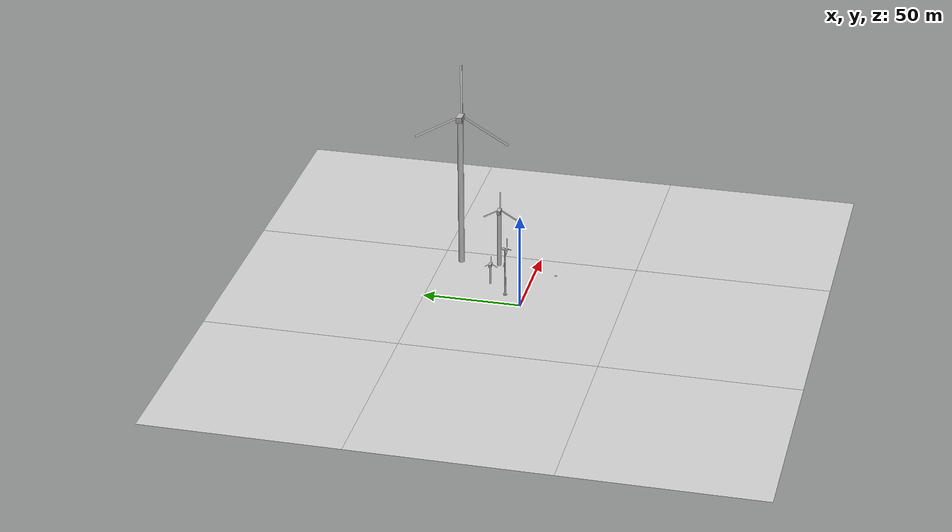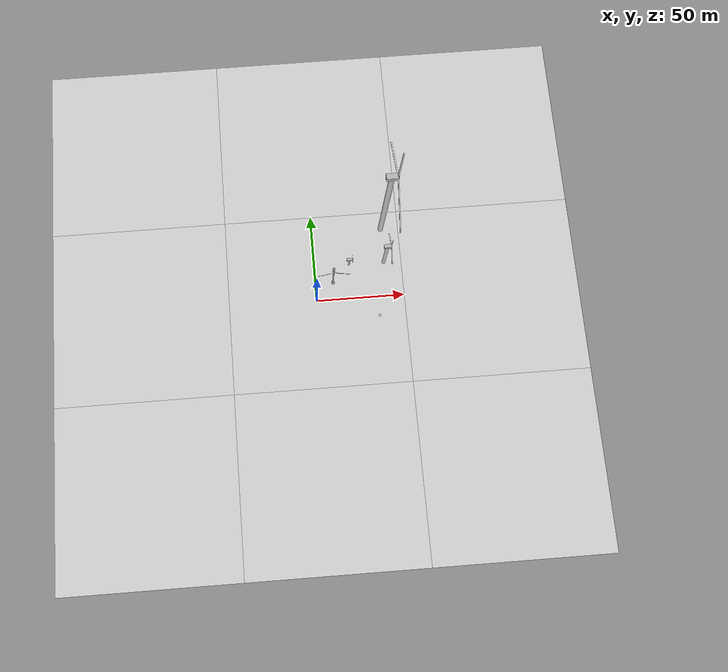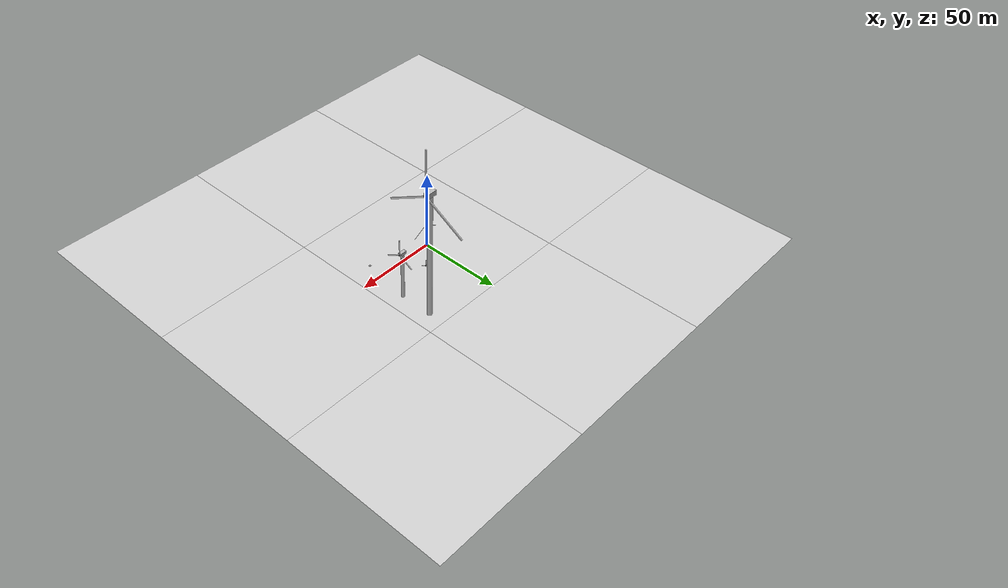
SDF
<?xml version="1.0" encoding="UTF-8"?>
<sdf version="1.9">
  <world name="default">
    <physics type="ode">
      <max_step_size>0.004</max_step_size>
      <real_time_factor>1.0</real_time_factor>
      <real_time_update_rate>250</real_time_update_rate>
    </physics>
    <gravity>0 0 -9.8</gravity>
    <magnetic_field>2.64e-05 -4.11e-07 3.50e-05</magnetic_field>  <!-- Sevilla, Spain (WMM2020) -->
    <atmosphere type="adiabatic"/>
    <scene>
      <sky>
        <clouds>
          <speed>12</speed>
        </clouds>
      </sky>
      <grid>true</grid>
      <ambient>0.5 0.5 0.5 0.3</ambient>
      <background>0.3 0.3 0.3 0.3</background>
      <shadows>true</shadows>
    </scene>

    <light name="sunUTC" type="directional">
      <pose>0 0 500 0 -0 0</pose>
      <cast_shadows>true</cast_shadows>
      <intensity>1</intensity>
      <direction>0.001 0.625 -0.78</direction>
      <diffuse>0.904 0.904 0.904 1</diffuse>
      <specular>0.271 0.271 0.271 1</specular>
      <attenuation>
        <range>2000</range>
        <linear>0</linear>
        <constant>1</constant>
        <quadratic>0</quadratic>
      </attenuation>
      <spot>
        <inner_angle>0</inner_angle>
        <outer_angle>0</outer_angle>
        <falloff>0</falloff>
      </spot>
    </light>
    <light type="directional" name="sun_2">
      <cast_shadows>true</cast_shadows>
      <pose>200 200 200 0 0 0</pose>
      <diffuse>0.5 0.5 0.5 0.3</diffuse>
      <specular>0.2 0.2 0.2 0.3</specular>
      <attenuation>
        <range>2000</range>
        <constant>1</constant>
        <linear>0</linear>
        <quadratic>0</quadratic>
      </attenuation>
      <direction>0.01 0.01 -0.9</direction>
    </light>

    <spherical_coordinates>
      <surface_model>EARTH_WGS84</surface_model>
      <world_frame_orientation>ENU</world_frame_orientation>
      <latitude_deg>37.410366</latitude_deg>
      <longitude_deg>-6.002338</longitude_deg>
      <elevation>0</elevation>
    </spherical_coordinates>

    <include>
      <uri>model://ground_grass</uri>
    </include>

    <!-- Bases -->
    <!--  UAV_Base1 -->
    <include>
      <name>uav_base_1</name>
      <uri>model://uav_base</uri>
      <pose>35.0 -11.0 0 0 0 0</pose>
    </include>
    <!--  WindGeneratorBasic1 -->
    <include>
      <name>windgeneratorbasic_1</name>
      <uri>model://windgeneratorbasic</uri>
      <pose>10.0 10.0 0 0 0 0</pose>
    </include>
    <!-- wind_turbine_1 -->
    <include>
      <name>wind_turbine_1</name>
      <uri>model://wind_turbine</uri>
      <pose>20.0 20.0 0 0 0 0</pose>
    </include>
    <!-- wind_turbine_1 -->
    <include>
      <name>wind_turbine_2</name>
      <uri>model://wind_turbine30m</uri>
      <pose>40.0 20.0 0 0 0 0</pose>
    </include>
    <include>
      <name>wind_turbine_3</name>
      <uri>model://wind_turbine80m</uri>
      <pose>40.0 40.0 0 0 0 0</pose>
    </include>
  </world>
</sdf>

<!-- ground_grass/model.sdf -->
<sdf version='1.6'>
  <model name="ground_grass">
    <include>
      <name>grass_1</name>
      <uri>model://grass_floor_textured</uri>
      <pose>0 0 0 0 0 0</pose>
    </include>
    <include>
      <name>grass_2</name>
      <uri>model://grass_floor_textured</uri>
      <pose>0 100 0 0 0 0</pose>
    </include>
    <include>
      <name>grass_3</name>
      <uri>model://grass_floor_textured</uri>
      <pose>0 -100 0 0 0 0</pose>
    </include>
    <include>
      <name>grass_4</name>
      <uri>model://grass_floor_textured</uri>
      <pose>-100 0 0 0 0 0</pose>
    </include>

    <include>
      <name>grass_5</name>
      <uri>model://grass_floor_textured</uri>
      <pose>-100 100 0 0 0 0</pose>
    </include>
    <include>
      <name>grass_6</name>
      <uri>model://grass_floor_textured</uri>
      <pose>-100 -100 0 0 0 0</pose>
    </include>
    <include>
      <name>grass_7</name>
      <uri>model://grass_floor_textured</uri>
      <pose>100 0 0 0 0 0</pose>
    </include>
    <include>
      <name>grass_8</name>
      <uri>model://grass_floor_textured</uri>
      <pose>100 -100 0 0 0 0</pose>
    </include>
    <include>
      <name>grass_9</name>
      <uri>model://grass_floor_textured</uri>
      <pose>100 100 0 0 0 0</pose>
    </include>
  </model>
</sdf>

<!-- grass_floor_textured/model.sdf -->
<sdf version="1.9">
  <model name="grass_floor_textured">
    <static>true</static>
    <link name="link">
      <collision name="collision">
        <geometry>
          <plane>
            <normal>0 0 1</normal>
            <size>100 100</size>
          </plane>
        </geometry>
      </collision>
      <visual name="visual">
        <geometry>
          <mesh>
            <uri>model://grass_floor_textured/materials/plane_tiled.dae</uri>
          </mesh>
        </geometry>
        <material>
          <ambient>0.8 0.8 0.8 1</ambient>
          <diffuse>0.8 0.8 0.8 1</diffuse>
          <specular>0.1 0.1 0.1 1</specular>
          <pbr>
            <metal>
              <albedo_map>materials/grass.jpg</albedo_map>
              <metalness>0.0</metalness>
              <roughness>0.8</roughness>
            </metal>
          </pbr>
        </material>
      </visual>
    </link>
  </model>
</sdf>

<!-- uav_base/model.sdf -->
<sdf version='1.6'>
  <model name='uav_base'>
    <pose frame=''>0 0 0.07 0 0 0</pose>
    <self_collide>false</self_collide>
    <!-- BASE_LINK FRAME -->
    <link name='uav_base_base'>
      <pose frame=''>0 0 0 0 0 0</pose>

      <visual name='uav_base_visual'>
        <pose frame=''>0 0 0 1.5708 0 0</pose>
        <geometry>
          <mesh>
            <scale>1 1 1</scale>
            <uri>model://uav_base/meshes/uav_base.obj</uri>
          </mesh>
        </geometry>
      </visual>

      <collision name='uav_base_collision'>
        <pose frame=''>0 0 0 0 0 0</pose>
        <geometry>
          <box>
            <size>0.5 0.5 0.2</size>
          </box>
        </geometry>
      </collision>
    </link>
    <static>true</static>
  </model>
</sdf>

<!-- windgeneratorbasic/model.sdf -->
<sdf version='1.6'>
  <model name='windgeneratorbasic'>
    <pose frame=''>0 0 0.07 0 0 0</pose>
    <self_collide>false</self_collide>
    <!-- BASE_LINK FRAME -->
    <link name='windgeneratorbasic_base'>
      <pose frame=''>0 0 0 0 0 0</pose>

      <visual name='windgeneratorbasic_visual'>
        <pose frame=''>0 0 0 1.5708 0 0</pose>
        <geometry>
          <mesh>
            <scale>1 1 1</scale>
            <uri>model://windgeneratorbasic/meshes/windTurbineBasic.obj</uri>
          </mesh>
        </geometry>
      </visual>
    </link>
    <static>true</static>
  </model>
</sdf>

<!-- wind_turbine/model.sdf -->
<sdf version="1.9">
  <model name="wind_turbine">
    <pose>0 0 0 0 0 0</pose>
    <static>false</static>

    <!-- Base/Torre -->
    <link name="tower">
      <pose>0 0 5 0 0 0</pose>
      <inertial>
        <mass>1000</mass>
        <inertia>
          <ixx>833.33</ixx>
          <iyy>833.33</iyy>
          <izz>10</izz>
          <ixy>0</ixy>
          <ixz>0</ixz>
          <iyz>0</iyz>
        </inertia>
      </inertial>
      <collision name="tower_collision">
        <geometry>
          <cylinder>
            <radius>0.5</radius>
            <length>10</length>
          </cylinder>
        </geometry>
      </collision>
      <visual name="tower_visual">
        <geometry>
          <cylinder>
            <radius>0.5</radius>
            <length>10</length>
          </cylinder>
        </geometry>
        <material>
          <ambient>0.8 0.8 0.8 1</ambient>
          <diffuse>0.8 0.8 0.8 1</diffuse>
        </material>
      </visual>
    </link>

    <!-- Góndola (nacelle) -->
    <link name="nacelle">
      <pose>0 0 10.5 0 0 0</pose>
      <inertial>
        <mass>100</mass>
        <inertia>
          <ixx>8.33</ixx>
          <iyy>8.33</iyy>
          <izz>8.33</izz>
          <ixy>0</ixy>
          <ixz>0</ixz>
          <iyz>0</iyz>
        </inertia>
      </inertial>
      <collision name="nacelle_collision">
        <geometry>
          <box>
            <size>3 1.5 1.5</size>
          </box>
        </geometry>
      </collision>
      <visual name="nacelle_visual">
        <geometry>
          <box>
            <size>3 1.5 1.5</size>
          </box>
        </geometry>
        <material>
          <ambient>0.7 0.7 0.7 1</ambient>
          <diffuse>0.7 0.7 0.7 1</diffuse>
        </material>
      </visual>
    </link>

    <!-- Hub central (centro de las aspas) -->
    <link name="hub">
      <pose>1.8 0 10.5 0 1.5708 0</pose>
      <inertial>
        <mass>50</mass>
        <inertia>
          <ixx>2.08</ixx>
          <iyy>2.08</iyy>
          <izz>2.08</izz>
          <ixy>0</ixy>
          <ixz>0</ixz>
          <iyz>0</iyz>
        </inertia>
      </inertial>
      <collision name="hub_collision">
        <geometry>
          <cylinder>
            <radius>0.4</radius>
            <length>0.5</length>
          </cylinder>
        </geometry>
      </collision>
      <visual name="hub_visual">
        <geometry>
          <cylinder>
            <radius>0.4</radius>
            <length>0.5</length>
          </cylinder>
        </geometry>
        <material>
          <ambient>0.3 0.3 0.3 1</ambient>
          <diffuse>0.3 0.3 0.3 1</diffuse>
        </material>
      </visual>
    </link>

    <!-- Aspa 1 (0 grados) -->
    <link name="blade_1">
      <pose>1.8 0 10.5 0 0 0</pose>
      <inertial>
        <pose>2 0 0 0 0 0</pose>
        <mass>20</mass>
        <inertia>
          <ixx>0.2</ixx>
          <iyy>13.33</iyy>
          <izz>13.33</izz>
          <ixy>0</ixy>
          <ixz>0</ixz>
          <iyz>0</iyz>
        </inertia>
      </inertial>
      <collision name="blade_1_collision">
        <pose>0 0 2 0 0 0</pose>
        <geometry>
          <box>
            <size>0.1 0.3 4.0</size>
          </box>
        </geometry>
      </collision>
      <visual name="blade_1_visual">
        <pose>0 0 2 0 0 0</pose>
        <geometry>
          <box>
            <size>0.1 0.3 4.0</size>
          </box>
        </geometry>
        <material>
          <ambient>1 1 1 1</ambient>
          <diffuse>1 1 1 1</diffuse>
        </material>
      </visual>
    </link>

    <!-- Aspa 2 (120 grados) -->
    <link name="blade_2">
      <pose>1.8 0 10.5 0 0 0</pose>
      <inertial>
        <pose>2 0 0 0 0 0</pose>
        <mass>20</mass>
        <inertia>
          <ixx>0.2</ixx>
          <iyy>13.33</iyy>
          <izz>13.33</izz>
          <ixy>0</ixy>
          <ixz>0</ixz>
          <iyz>0</iyz>
        </inertia>
      </inertial>
      <collision name="blade_2_collision">
        <pose>0 -1.5 -1.0 2.0944 0  0 </pose>
        <geometry>
          <box>
            <size>0.1 0.3 4.0</size>
          </box>
        </geometry>
      </collision>
      <visual name="blade_2_visual">
        <pose>0 -1.5 -1.0 2.0944 0  0 </pose>
        <geometry>
          <box>
            <size>0.1 0.3 4.0</size>
          </box>
        </geometry>
        <material>
          <ambient>1 1 1 1</ambient>
          <diffuse>1 1 1 1</diffuse>
        </material>
      </visual>
    </link>

    <!-- Aspa 3 (240 grados) -->
    <link name="blade_3">
      <pose>1.8 0 10.5  0 0 0</pose>
      <inertial>
        <pose>2 0 0 0 0 0</pose>
        <mass>20</mass>
        <inertia>
          <ixx>0.2</ixx>
          <iyy>13.33</iyy>
          <izz>13.33</izz>
          <ixy>0</ixy>
          <ixz>0</ixz>
          <iyz>0</iyz>
        </inertia>
      </inertial>
      <collision name="blade_3_collision">
        <pose>0 1.5 -1.0 4.1888 0  0 </pose>
        <geometry>
          <box>
            <size>0.1 0.3 4.0</size>
          </box>
        </geometry>
      </collision>
      <visual name="blade_3_visual">
        <pose>0 1.5 -1.0 4.1888  0 0</pose>
        <geometry>
          <box>
            <size>0.1 0.3 4.0</size>
          </box>
        </geometry>
        <material>
          <ambient>1 1 1 1</ambient>
          <diffuse>1 1 1 1</diffuse>
        </material>
      </visual>
    </link>

    <!-- Joint: Torre fija al mundo -->
    <joint name="tower_fixed" type="fixed">
      <parent>world</parent>
      <child>tower</child>
    </joint>

    <!-- Joint: Góndola con rotación yaw (orientación al viento) -->
    <joint name="nacelle_yaw_joint" type="revolute">
      <parent>tower</parent>
      <child>nacelle</child>
      <axis>
        <xyz>0 0 1</xyz>
        <limit>
          <lower>-1e16</lower>
          <upper>1e16</upper>
        </limit>
        <dynamics>
          <damping>0.5</damping>
          <friction>0.1</friction>
        </dynamics>
      </axis>
    </joint>

    <!-- Joint: Hub giratorio conectado a la góndola -->
    <joint name="rotor_joint" type="revolute">
      <parent>nacelle</parent>
      <child>hub</child>
      <axis>
        <xyz>0 0 1</xyz>
        <limit>
          <lower>-1e16</lower>
          <upper>1e16</upper>
        </limit>
      </axis>
    </joint>

    <!-- Aspas fijas al hub (separadas 120 grados) -->
    <joint name="blade_1_joint" type="fixed">
      <parent>hub</parent>
      <child>blade_1</child>
    </joint>

    <joint name="blade_2_joint" type="fixed">
      <parent>hub</parent>
      <child>blade_2</child>
    </joint>

    <joint name="blade_3_joint" type="fixed">
      <parent>hub</parent>
      <child>blade_3</child>
    </joint>

    <!-- Plugin para aplicar velocidad constante al rotor -->
    <plugin
      filename="gz-sim-joint-controller-system"
      name="gz::sim::systems::JointController">
      <topic>/model/wind_turbine/rotor_speed_cmd</topic>
      <joint_name>rotor_joint</joint_name>
      <use_velocity_commands>true</use_velocity_commands>
      <initial_velocity>1.0</initial_velocity>
    </plugin>

    <!-- Plugin de servo para control de posición de la góndola (yaw) -->
    <plugin
      filename="gz-sim-joint-position-controller-system"
      name="gz::sim::systems::JointPositionController">
      <joint_name>nacelle_yaw_joint</joint_name>
      <topic>/model/wind_turbine/gondola_yaw_cmd</topic>
      <p_gain>10.0</p_gain>
      <i_gain>0.1</i_gain>
      <d_gain>0.5</d_gain>
      <i_max>1.0</i_max>
      <i_min>-1.0</i_min>
      <cmd_max>100</cmd_max>
      <cmd_min>-100</cmd_min>
    </plugin>

  </model>
</sdf>

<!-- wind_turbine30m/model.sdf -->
<sdf version="1.9">
  <model name="wind_turbine30m">
    <pose>0 0 0 0 0 0</pose>
    <static>false</static>

    <!-- ===================== TORRE ===================== -->
    <link name="tower">
      <pose>0 0 15 0 0 0</pose> <!-- Centro a mitad de altura -->
      <inertial>
        <mass>1000</mass>
        <inertia>
          <ixx>833.33</ixx>
          <iyy>833.33</iyy>
          <izz>10</izz>
        </inertia>
      </inertial>
      <collision name="collision">
        <geometry>
          <cylinder>
            <radius>1</radius>
            <length>30</length>
          </cylinder>
        </geometry>
      </collision>
      <visual name="visual">
        <geometry>
          <cylinder>
            <radius>1</radius>
            <length>30</length>
          </cylinder>
        </geometry>
        <material>
          <ambient>0.8 0.8 0.8 1</ambient>
          <diffuse>0.8 0.8 0.8 1</diffuse>
        </material>
      </visual>
    </link>

    <!-- ===================== GÓNDOLA (Nacelle) ===================== -->
    <link name="nacelle">
      <pose>0 0 31 0 0 0</pose> <!-- Encima de la torre -->
      <inertial>
        <mass>100</mass>
        <inertia>
          <ixx>8.33</ixx>
          <iyy>8.33</iyy>
          <izz>8.33</izz>
        </inertia>
      </inertial>
      <collision name="collision">
        <geometry>
          <box>
            <size>4 2 2</size>
          </box>
        </geometry>
      </collision>
      <visual name="visual">
        <geometry>
          <box>
            <size>4 2 2</size>
          </box>
        </geometry>
        <material>
          <ambient>0.7 0.7 0.7 1</ambient>
          <diffuse>0.7 0.7 0.7 1</diffuse>
        </material>
      </visual>
    </link>

    <!-- ===================== ROTOR (Hub + 3 Aspas como un solo cuerpo) ===================== -->
    <link name="rotor">
      <pose>2 0 31 0 0 0</pose> <!-- Delante de góndola-->
      <inertial>
        <!-- Masa total: hub(50) + 3 aspas(20*3) = 110 kg -->
        <mass>110</mass>
        <inertia>
          <!-- Inercia aproximada del conjunto rotor -->
          <ixx>42</ixx>
          <iyy>800</iyy>  <!-- Mayor inercia en dirección perpendicular al eje -->
          <izz>800</izz>
          <ixy>0</ixy>
          <ixz>0</ixz>
          <iyz>0</iyz>
        </inertia>
      </inertial>

      <!-- Hub central -->
      <collision name="hub_collision">
        <pose>0 0 0 0 1.5708 0</pose>
        <geometry>
          <cylinder>
            <radius>0.4</radius>
            <length>0.5</length>
          </cylinder>
        </geometry>
      </collision>
      <visual name="hub_visual">
        <pose>0 0 0 0 1.5708 0</pose>
        <geometry>
          <cylinder>
            <radius>0.4</radius>
            <length>0.5</length>
          </cylinder>
        </geometry>
        <material>
          <ambient>0.3 0.3 0.3 1</ambient>
          <diffuse>0.3 0.3 0.3 1</diffuse>
        </material>
      </visual>

      <!-- Aspa 1 (0°) -->
      <collision name="blade_1_collision">
        <pose>0 0 5 0 0 0</pose>
        <geometry>
          <box>
            <size>0.3 0.6 10.0</size>
          </box>
        </geometry>
      </collision>
      <visual name="blade_1_visual">
        <pose>0 0 5 0 0 0</pose>
        <geometry>
          <box>
            <size>0.3 0.6 10.0</size>
          </box>
        </geometry>
        <material>
          <ambient>0.95 0.95 0.95 1</ambient>
          <diffuse>0.95 0.95 0.95 1</diffuse>
        </material>
      </visual>

      <!-- Aspa 2 (120°) -->
      <collision name="blade_2_collision">
        <pose>0 -4.33 -2.5 2.0944 0 0</pose>  <!-- 120° = 2.0944 rad -->
        <geometry>
          <box>
            <size>0.3 0.6 10.0</size>
          </box>
        </geometry>
      </collision>
      <visual name="blade_2_visual">
        <pose> 0 -4.33 -2.5 2.0944 0 0</pose>
        <geometry>
          <box>
            <size>0.3 0.6 10.0</size>
          </box>
        </geometry>
        <material>
          <ambient>0.95 0.95 0.95 1</ambient>
          <diffuse>0.95 0.95 0.95 1</diffuse>
        </material>
      </visual>

      <!-- Aspa 3 (240°) -->
      <collision name="blade_3_collision">
        <pose>0  4.33 -2.5  4.1888 0 0</pose>  <!-- 240° = 4.1888 rad -->
        <geometry>
          <box>
            <size>0.3 0.6 10.0</size>
          </box>
        </geometry>
      </collision>
      <visual name="blade_3_visual">
        <pose>0 4.33 -2.5  4.1888 0 0</pose>
        <geometry>
          <box>
            <size>0.3 0.6 10.0</size>
          </box>
        </geometry>
        <material>
          <ambient>0.95 0.95 0.95 1</ambient>
          <diffuse>0.95 0.95 0.95 1</diffuse>
        </material>
      </visual>
    </link>

    <!-- ===================== JOINTS ===================== -->

    <!-- Torre fija al mundo -->
    <joint name="tower_fixed" type="fixed">
      <parent>world</parent>
      <child>tower</child>
    </joint>

    <!-- Góndola rota sobre torre (orientación al viento - yaw) -->
    <joint name="nacelle_yaw_joint" type="revolute">
      <parent>tower</parent>
      <child>nacelle</child>
      <axis>
        <xyz>0 0 1</xyz>
        <limit>
          <lower>-1e16</lower>
          <upper>1e16</upper>
        </limit>
        <dynamics>
          <damping>0.5</damping>
          <friction>0.1</friction>
        </dynamics>
      </axis>
    </joint>

    <!-- Rotor gira sobre góndola (generación de energía) -->
    <joint name="rotor_joint" type="revolute">
      <parent>nacelle</parent>
      <child>rotor</child>
      <axis>
        <xyz>1 0 0</xyz>  <!-- Eje local del rotor (perpendicular a aspas) -->
        <limit>
          <lower>-1e16</lower>
          <upper>1e16</upper>
        </limit>
        <dynamics>
          <damping>0.1</damping>
        </dynamics>
      </axis>
    </joint>

    <!-- ===================== PLUGINS ===================== -->

    <!-- Control de velocidad del rotor -->
    <plugin
      filename="gz-sim-joint-controller-system"
      name="gz::sim::systems::JointController">
      <topic>/model/wind_turbine/rotor_speed_cmd</topic>
      <joint_name>rotor_joint</joint_name>
      <use_velocity_commands>true</use_velocity_commands>
      <initial_velocity>1.0</initial_velocity>  <!-- 1 rad/s inicial -->
    </plugin>

    <!-- Control de orientación de la góndola -->
    <plugin
      filename="gz-sim-joint-position-controller-system"
      name="gz::sim::systems::JointPositionController">
      <joint_name>nacelle_yaw_joint</joint_name>
      <topic>/model/wind_turbine/gondola_yaw_cmd</topic>
      <p_gain>10.0</p_gain>
      <i_gain>0.1</i_gain>
      <d_gain>0.5</d_gain>
      <i_max>1.0</i_max>
      <i_min>-1.0</i_min>
      <cmd_max>100</cmd_max>
      <cmd_min>-100</cmd_min>
    </plugin>

  </model>
</sdf>

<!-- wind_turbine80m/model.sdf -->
<sdf version="1.9">
  <model name="wind_turbine80m">
    <!-- blade=28 -->
    <!-- hub_height=80 -->
    <pose>0 0 0 0 0 0</pose>
    <static>false</static>

    <!-- ===================== TORRE ===================== -->
    <link name="tower">
      <!-- x=0 y=0 z=hub_height/2 -->
      <pose>0 0 40 0 0 0</pose> <!-- Centro a mitad de altura -->
      <inertial>
        <!-- Masa muy alta para hacerla prácticamente inamovible -->
        <mass>100000</mass>
        <inertia>
          <ixx>83333333</ixx>
          <iyy>83333333</iyy>
          <izz>1000</izz>
        </inertia>
      </inertial>
      <!-- Colisión activa - el dron detectará el choque pero la torre no se moverá -->
      <collision name="collision">
        <geometry>
          <cylinder>
            <radius>1.5</radius>
            <length>80</length>
          </cylinder>
        </geometry>
        <surface>
          <friction>
            <ode>
              <mu>1.0</mu>
              <mu2>1.0</mu2>
            </ode>
          </friction>
          <contact>
            <ode>
              <kp>1000000.0</kp>  <!-- Rigidez muy alta -->
              <kd>100.0</kd>       <!-- Amortiguamiento -->
              <max_vel>0.01</max_vel>
              <min_depth>0.001</min_depth>
            </ode>
          </contact>
        </surface>
      </collision>
      <visual name="visual">
        <geometry>
          <cylinder>
            <radius>1.5</radius>
            <length>80</length>
          </cylinder>
        </geometry>
        <material>
          <ambient>0.8 0.8 0.8 1</ambient>
          <diffuse>0.8 0.8 0.8 1</diffuse>
        </material>
      </visual>
    </link>

    <!-- ===================== GÓNDOLA (Nacelle) ===================== -->
    <link name="nacelle">
      <!-- x=0 y=0 z=hub_height + 1.5 -->
      <pose>0 0 81.5 0 0 0</pose> <!-- Encima de la torre -->
      <inertial>
        <!-- Masa alta para estabilidad -->
        <mass>5000</mass>
        <inertia>
          <ixx>833.33</ixx>
          <iyy>833.33</iyy>
          <izz>833.33</izz>
        </inertia>
      </inertial>
      <!-- Colisión activa - detecta choques pero no se mueve -->
      <collision name="collision">
        <geometry>
          <box>
            <size>6 3 3</size>
          </box>
        </geometry>
        <surface>
          <friction>
            <ode>
              <mu>1.0</mu>
              <mu2>1.0</mu2>
            </ode>
          </friction>
          <contact>
            <ode>
              <kp>1000000.0</kp>
              <kd>100.0</kd>
              <max_vel>0.01</max_vel>
              <min_depth>0.001</min_depth>
            </ode>
          </contact>
        </surface>
      </collision>
      <visual name="visual">
        <geometry>
          <box>
            <size>6 3 3</size>
          </box>
        </geometry>
        <material>
          <ambient>0.7 0.7 0.7 1</ambient>
          <diffuse>0.7 0.7 0.7 1</diffuse>
        </material>
      </visual>
    </link>

    <!-- ===================== ROTOR (Hub + 3 Aspas como un solo cuerpo) ===================== -->
    <link name="rotor">
      <!-- x=3 y=0 z=hub_height + 1.5 -->
      <pose >3 0 81.5 0 0 0</pose> <!-- Delante de góndola-->
      <inertial>
        <!-- Masa total: hub(50) + 3 aspas(20*3) = 110 kg -->
        <mass>110</mass>
        <inertia>
          <!-- Inercia aproximada del conjunto rotor -->
          <ixx>42</ixx>
          <iyy>800</iyy>  <!-- Mayor inercia en dirección perpendicular al eje -->
          <izz>800</izz>
          <ixy>0</ixy>
          <ixz>0</ixz>
          <iyz>0</iyz>
        </inertia>
      </inertial>

      <!-- Hub central -->
      <collision name="hub_collision">
        <pose>0 0 0 0 1.5708 0</pose>
        <geometry>
          <cylinder>
            <radius>1</radius>
            <length>1</length>
          </cylinder>
        </geometry>
        <surface>
          <friction>
            <ode>
              <mu>1.0</mu>
              <mu2>1.0</mu2>
            </ode>
          </friction>
          <contact>
            <ode>
              <kp>1000000.0</kp>
              <kd>100.0</kd>
              <max_vel>0.01</max_vel>
              <min_depth>0.001</min_depth>
            </ode>
          </contact>
        </surface>
      </collision>
      <visual name="hub_visual">
        <pose>0 0 0 0 1.5708 0</pose>
        <geometry>
          <cylinder>
            <radius>1</radius>
            <length>1</length>
          </cylinder>
        </geometry>
        <material>
          <ambient>0.3 0.3 0.3 1</ambient>
          <diffuse>0.3 0.3 0.3 1</diffuse>
        </material>
      </visual>

      <!-- Aspa 1 (0°) -->
      <collision name="blade_1_collision">
        <!-- x=0 y=0 z=blade/2 -->
        <pose>0 0 14 0 0 0</pose>
        <geometry>
          <box>
            <size>0.5 1 28.0</size>
          </box>
        </geometry>
        <surface>
          <friction>
            <ode>
              <mu>1.0</mu>
              <mu2>1.0</mu2>
            </ode>
          </friction>
          <contact>
            <ode>
              <kp>1000000.0</kp>
              <kd>100.0</kd>
              <max_vel>0.01</max_vel>
              <min_depth>0.001</min_depth>
            </ode>
          </contact>
        </surface>
      </collision>
      <visual name="blade_1_visual">
        <!-- x=0 y=0 z=blade/2 -->
        <pose>0 0 14 0 0 0</pose>
        <geometry>
          <box>
            <size>0.5 1 28.0</size>
          </box>
        </geometry>
        <material>
          <ambient>0.95 0.95 0.95 1</ambient>
          <diffuse>0.95 0.95 0.95 1</diffuse>
        </material>
      </visual>

      <!-- Aspa 2 (120°) -->
      <collision name="blade_2_collision">
        <!-- x=0 y=-sin(240°)*blade/2 z=cos(240°)*blade/2 -->
        <pose>0 -12.12 -7 2.0944 0 0</pose>  <!-- 120° = 2.0944 rad -->
        <geometry>
          <box>
            <size>0.5 1 28.0</size>
          </box>
        </geometry>
        <surface>
          <friction>
            <ode>
              <mu>1.0</mu>
              <mu2>1.0</mu2>
            </ode>
          </friction>
          <contact>
            <ode>
              <kp>1000000.0</kp>
              <kd>100.0</kd>
              <max_vel>0.01</max_vel>
              <min_depth>0.001</min_depth>
            </ode>
          </contact>
        </surface>
      </collision>
      <visual name="blade_2_visual">
        <!-- x=0 y=-sin(240°)*blade/2 z=cos(240°)*blade/2 -->
        <pose> 0 -12.12 -7 2.0944 0 0</pose>
        <geometry>
          <box>
            <size>0.5 1 28.0</size>
          </box>
        </geometry>
        <material>
          <ambient>0.95 0.95 0.95 1</ambient>
          <diffuse>0.95 0.95 0.95 1</diffuse>
        </material>
      </visual>

      <!-- Aspa 3 (240°) -->
      <collision name="blade_3_collision">
        <!-- x=0 y=-sin(240°)*blade/2 z=cos(240°)*blade/2 -->
        <pose>0  12.12 -7  4.1888 0 0</pose>  <!-- 240° = 4.1888 rad -->
        <geometry>
          <box>
            <size>0.5 1 28.0</size>
          </box>
        </geometry>
        <surface>
          <friction>
            <ode>
              <mu>1.0</mu>
              <mu2>1.0</mu2>
            </ode>
          </friction>
          <contact>
            <ode>
              <kp>1000000.0</kp>
              <kd>100.0</kd>
              <max_vel>0.01</max_vel>
              <min_depth>0.001</min_depth>
            </ode>
          </contact>
        </surface>
      </collision>
      <visual name="blade_3_visual">
        <!-- x=0 y=-sin(240°)*blade/2 z=cos(240°)*blade/2 -->
        <pose>0 12.12 -7  4.1888 0 0</pose>
        <geometry>
          <box>
            <size>0.5 1 28.0</size>
          </box>
        </geometry>
        <material>
          <ambient>0.95 0.95 0.95 1</ambient>
          <diffuse>0.95 0.95 0.95 1</diffuse>
        </material>
      </visual>
    </link>

    <!-- ===================== JOINTS ===================== -->

    <!-- Torre fija al mundo -->
    <joint name="tower_fixed" type="fixed">
      <parent>world</parent>
      <child>tower</child>
    </joint>

    <!-- Góndola rota sobre torre (orientación al viento - yaw) -->
    <joint name="nacelle_yaw_joint" type="revolute">
      <parent>tower</parent>
      <child>nacelle</child>
      <axis>
        <xyz>0 0 1</xyz>
        <limit>
          <lower>-1e16</lower>
          <upper>1e16</upper>
        </limit>
        <dynamics>
          <damping>2</damping>
          <friction>0.1</friction>
        </dynamics>
      </axis>
    </joint>

    <!-- Rotor gira sobre góndola (generación de energía) -->
    <joint name="rotor_joint" type="revolute">
      <parent>nacelle</parent>
      <child>rotor</child>
      <axis>
        <xyz>1 0 0</xyz>  <!-- Eje local del rotor (perpendicular a aspas) -->
        <limit>
          <lower>-1e16</lower>
          <upper>1e16</upper>
        </limit>
        <dynamics>
          <damping>2</damping>
        </dynamics>
      </axis>
    </joint>

    <!-- ===================== PLUGINS ===================== -->

    <!-- Control de velocidad del rotor -->
    <plugin
      filename="gz-sim-joint-controller-system"
      name="gz::sim::systems::JointController">
      <topic>/model/wind_turbine/rotor_speed_cmd</topic>
      <joint_name>rotor_joint</joint_name>
      <use_velocity_commands>true</use_velocity_commands>
      <initial_velocity>1.0</initial_velocity>  <!-- 1 rad/s inicial -->
    </plugin>

    <!-- Control de orientación de la góndola -->
    <plugin
      filename="gz-sim-joint-position-controller-system"
      name="gz::sim::systems::JointPositionController">
      <joint_name>nacelle_yaw_joint</joint_name>
      <topic>/model/wind_turbine/gondola_yaw_cmd</topic>
      <p_gain>10.0</p_gain>
      <i_gain>0.1</i_gain>
      <d_gain>0.5</d_gain>
      <i_max>1.0</i_max>
      <i_min>-1.0</i_min>
      <cmd_max>100</cmd_max>
      <cmd_min>-100</cmd_min>
    </plugin>

  </model>
</sdf>
